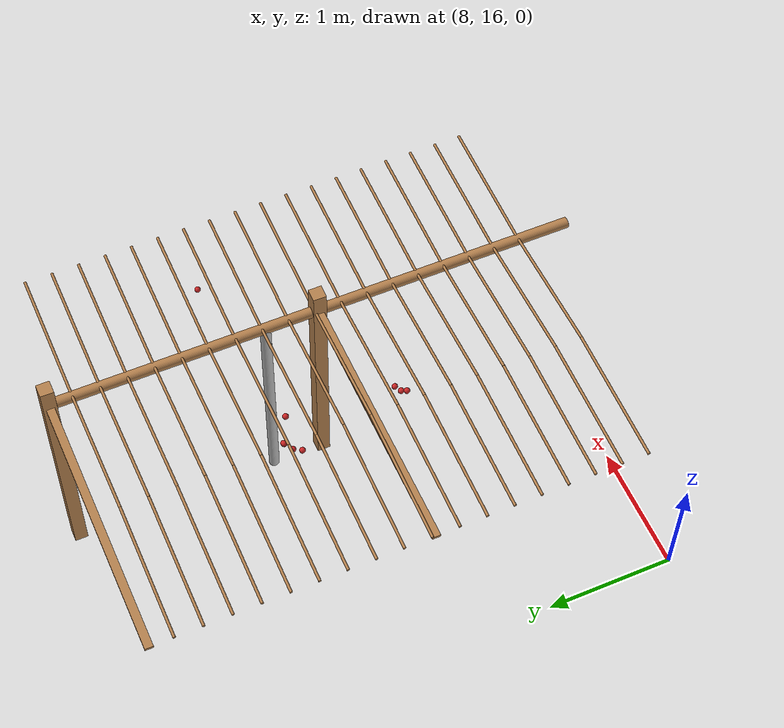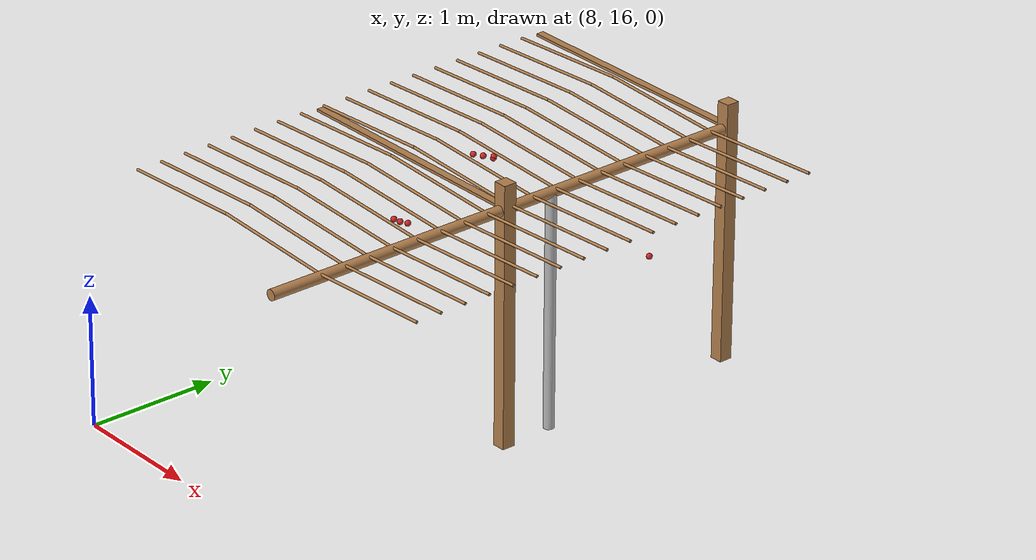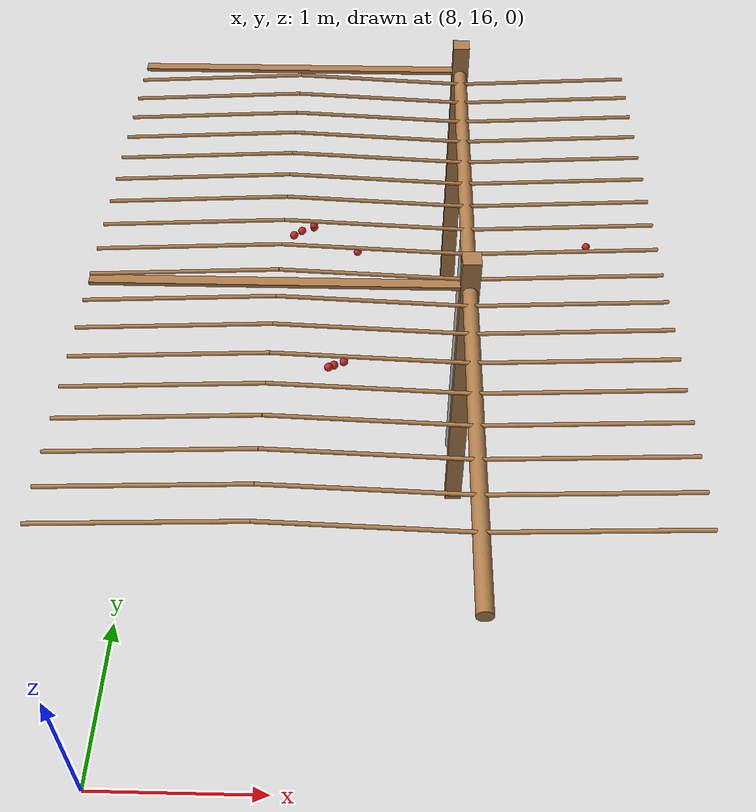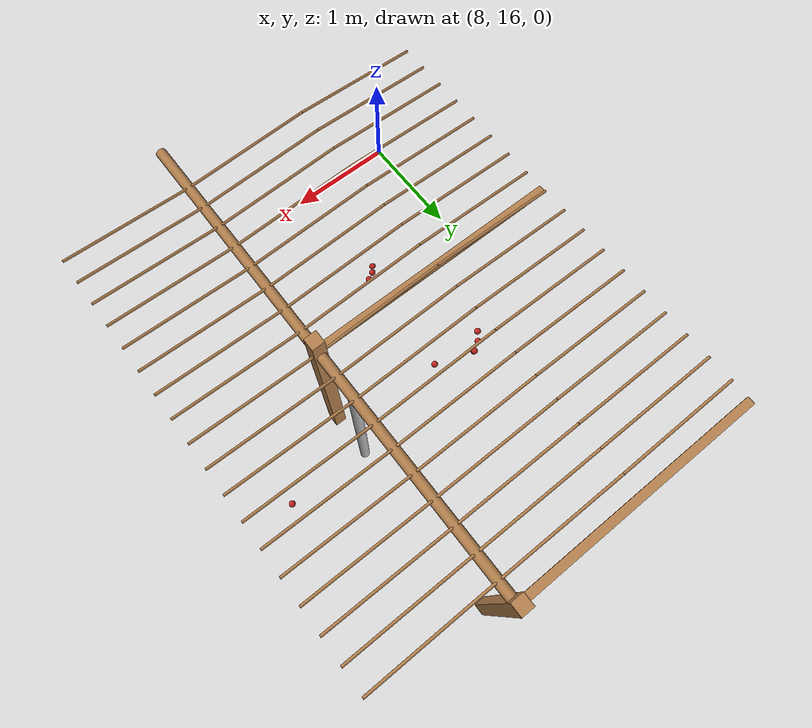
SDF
<sdf version="1.4">
 <model name="pergola">
  <include><name>post_64</name><pose>10.0 18.0 0 0 0 0</pose><uri>model://post</uri></include>
  <include><name>post_65</name><pose>10.0 20.0 0 0 0 0</pose><uri>model://post</uri></include>
  <link name="beam_53">
   <pose>9.0 18.0 1.81 0 0 0</pose>
   <collision name="collision"><geometry><box><size>2.0 0.06 0.02</size></box></geometry></collision>
   <visual name="visual">
    <geometry><box><size>2.0 0.06 0.02</size></box></geometry>
    <material><script><name>Gazebo/Wood</name></script></material>
   </visual>
   <inertial>
    <mass>5</mass>
    <inertia>
     <ixx>0.0016666666666666668</ixx>
     <ixy>0.0</ixy>
     <ixz>0.0</ixz>
     <iyy>1.6681666666666664</iyy>
     <iyz>0.0</iyz>
     <izz>1.6668333333333332</izz>
    </inertia>
   </inertial>
  </link>
  <link name="beam_54">
   <pose>9.0 20.0 1.81 0 0 0</pose>
   <collision name="collision"><geometry><box><size>2.0 0.06 0.02</size></box></geometry></collision>
   <visual name="visual">
    <geometry><box><size>2.0 0.06 0.02</size></box></geometry>
    <material><script><name>Gazebo/Wood</name></script></material>
   </visual>
   <inertial>
    <mass>5</mass>
    <inertia>
     <ixx>0.0016666666666666668</ixx>
     <ixy>0.0</ixy>
     <ixz>0.0</ixz>
     <iyy>1.6681666666666664</iyy>
     <iyz>0.0</iyz>
     <izz>1.6668333333333332</izz>
    </inertia>
   </inertial>
  </link>
  <include><name>tree_59</name><pose>10.0 18.4 0 0 0 0</pose><uri>model://tree_trunk</uri></include>
  <link name="baseBranch_58">
   <pose>10.0 17.0 1.8 1.5707963267948966 0 0</pose>
   <collision name="collision">
    <geometry><cylinder><radius>0.04</radius><length>1.94</length></cylinder></geometry>
   </collision>
   <visual name="visual">
    <geometry><cylinder><radius>0.04</radius><length>1.94</length></cylinder></geometry>
    <material><script><name>Gazebo/WoodFloor</name></script></material>
   </visual>
   <inertial>
    <mass>10</mass>
    <inertia>
     <ixx>3.140333333333333</ixx>
     <ixy>0.0</ixy>
     <ixz>0.0</ixz>
     <iyy>3.140333333333333</iyy>
     <iyz>0.0</iyz>
     <izz>0.008</izz>
    </inertia>
   </inertial>
  </link>
  <link name="baseBranch_59">
   <pose>10.0 19.0 1.8 1.5707963267948966 0 0</pose>
   <collision name="collision">
    <geometry><cylinder><radius>0.04</radius><length>1.94</length></cylinder></geometry>
   </collision>
   <visual name="visual">
    <geometry><cylinder><radius>0.04</radius><length>1.94</length></cylinder></geometry>
    <material><script><name>Gazebo/WoodFloor</name></script></material>
   </visual>
   <inertial>
    <mass>10</mass>
    <inertia>
     <ixx>3.140333333333333</ixx>
     <ixy>0.0</ixy>
     <ixz>0.0</ixz>
     <iyy>3.140333333333333</iyy>
     <iyz>0.0</iyz>
     <izz>0.008</izz>
    </inertia>
   </inertial>
  </link>
  <link name="vine_964">
   <pose>8.5 16.430000000000003 1.85 0 1.5208379310729538 0</pose>
   <collision name="collision">
    <geometry><cylinder><radius>0.01</radius><length>1.0012492197250393</length></cylinder></geometry>
   </collision>
   <visual name="visual">
    <geometry><cylinder><radius>0.01</radius><length>1.0012492197250393</length></cylinder></geometry>
    <material><script><name>Gazebo/WoodFloor</name></script></material>
   </visual>
   <inertial>
    <mass>5</mass>
    <inertia>
     <ixx>0.41783333333333345</ixx>
     <ixy>0.0</ixy>
     <ixz>0.0</ixz>
     <iyy>0.41783333333333345</iyy>
     <iyz>0.0</iyz>
     <izz>0.00025</izz>
    </inertia>
   </inertial>
  </link>
  <link name="vine_965">
   <pose>9.5 16.430000000000003 1.85 0 -1.5208379310729538 0</pose>
   <collision name="collision">
    <geometry><cylinder><radius>0.01</radius><length>1.0012492197250393</length></cylinder></geometry>
   </collision>
   <visual name="visual">
    <geometry><cylinder><radius>0.01</radius><length>1.0012492197250393</length></cylinder></geometry>
    <material><script><name>Gazebo/WoodFloor</name></script></material>
   </visual>
   <inertial>
    <mass>5</mass>
    <inertia>
     <ixx>0.41783333333333345</ixx>
     <ixy>0.0</ixy>
     <ixz>0.0</ixz>
     <iyy>0.41783333333333345</iyy>
     <iyz>0.0</iyz>
     <izz>0.00025</izz>
    </inertia>
   </inertial>
  </link>
  <link name="vine_966">
   <pose>8.5 16.630000000000003 1.85 0 1.5208379310729538 0</pose>
   <collision name="collision">
    <geometry><cylinder><radius>0.01</radius><length>1.0012492197250393</length></cylinder></geometry>
   </collision>
   <visual name="visual">
    <geometry><cylinder><radius>0.01</radius><length>1.0012492197250393</length></cylinder></geometry>
    <material><script><name>Gazebo/WoodFloor</name></script></material>
   </visual>
   <inertial>
    <mass>5</mass>
    <inertia>
     <ixx>0.41783333333333345</ixx>
     <ixy>0.0</ixy>
     <ixz>0.0</ixz>
     <iyy>0.41783333333333345</iyy>
     <iyz>0.0</iyz>
     <izz>0.00025</izz>
    </inertia>
   </inertial>
  </link>
  <link name="vine_967">
   <pose>9.5 16.630000000000003 1.85 0 -1.5208379310729538 0</pose>
   <collision name="collision">
    <geometry><cylinder><radius>0.01</radius><length>1.0012492197250393</length></cylinder></geometry>
   </collision>
   <visual name="visual">
    <geometry><cylinder><radius>0.01</radius><length>1.0012492197250393</length></cylinder></geometry>
    <material><script><name>Gazebo/WoodFloor</name></script></material>
   </visual>
   <inertial>
    <mass>5</mass>
    <inertia>
     <ixx>0.41783333333333345</ixx>
     <ixy>0.0</ixy>
     <ixz>0.0</ixz>
     <iyy>0.41783333333333345</iyy>
     <iyz>0.0</iyz>
     <izz>0.00025</izz>
    </inertia>
   </inertial>
  </link>
  <link name="vine_968">
   <pose>8.5 16.830000000000002 1.85 0 1.5208379310729538 0</pose>
   <collision name="collision">
    <geometry><cylinder><radius>0.01</radius><length>1.0012492197250393</length></cylinder></geometry>
   </collision>
   <visual name="visual">
    <geometry><cylinder><radius>0.01</radius><length>1.0012492197250393</length></cylinder></geometry>
    <material><script><name>Gazebo/WoodFloor</name></script></material>
   </visual>
   <inertial>
    <mass>5</mass>
    <inertia>
     <ixx>0.41783333333333345</ixx>
     <ixy>0.0</ixy>
     <ixz>0.0</ixz>
     <iyy>0.41783333333333345</iyy>
     <iyz>0.0</iyz>
     <izz>0.00025</izz>
    </inertia>
   </inertial>
  </link>
  <link name="vine_969">
   <pose>9.5 16.830000000000002 1.85 0 -1.5208379310729538 0</pose>
   <collision name="collision">
    <geometry><cylinder><radius>0.01</radius><length>1.0012492197250393</length></cylinder></geometry>
   </collision>
   <visual name="visual">
    <geometry><cylinder><radius>0.01</radius><length>1.0012492197250393</length></cylinder></geometry>
    <material><script><name>Gazebo/WoodFloor</name></script></material>
   </visual>
   <inertial>
    <mass>5</mass>
    <inertia>
     <ixx>0.41783333333333345</ixx>
     <ixy>0.0</ixy>
     <ixz>0.0</ixz>
     <iyy>0.41783333333333345</iyy>
     <iyz>0.0</iyz>
     <izz>0.00025</izz>
    </inertia>
   </inertial>
  </link>
  <link name="vine_970">
   <pose>8.5 17.03 1.85 0 1.5208379310729538 0</pose>
   <collision name="collision">
    <geometry><cylinder><radius>0.01</radius><length>1.0012492197250393</length></cylinder></geometry>
   </collision>
   <visual name="visual">
    <geometry><cylinder><radius>0.01</radius><length>1.0012492197250393</length></cylinder></geometry>
    <material><script><name>Gazebo/WoodFloor</name></script></material>
   </visual>
   <inertial>
    <mass>5</mass>
    <inertia>
     <ixx>0.41783333333333345</ixx>
     <ixy>0.0</ixy>
     <ixz>0.0</ixz>
     <iyy>0.41783333333333345</iyy>
     <iyz>0.0</iyz>
     <izz>0.00025</izz>
    </inertia>
   </inertial>
  </link>
  <link name="vine_971">
   <pose>9.5 17.03 1.85 0 -1.5208379310729538 0</pose>
   <collision name="collision">
    <geometry><cylinder><radius>0.01</radius><length>1.0012492197250393</length></cylinder></geometry>
   </collision>
   <visual name="visual">
    <geometry><cylinder><radius>0.01</radius><length>1.0012492197250393</length></cylinder></geometry>
    <material><script><name>Gazebo/WoodFloor</name></script></material>
   </visual>
   <inertial>
    <mass>5</mass>
    <inertia>
     <ixx>0.41783333333333345</ixx>
     <ixy>0.0</ixy>
     <ixz>0.0</ixz>
     <iyy>0.41783333333333345</iyy>
     <iyz>0.0</iyz>
     <izz>0.00025</izz>
    </inertia>
   </inertial>
  </link>
  <link name="vine_972">
   <pose>8.5 17.23 1.85 0 1.5208379310729538 0</pose>
   <collision name="collision">
    <geometry><cylinder><radius>0.01</radius><length>1.0012492197250393</length></cylinder></geometry>
   </collision>
   <visual name="visual">
    <geometry><cylinder><radius>0.01</radius><length>1.0012492197250393</length></cylinder></geometry>
    <material><script><name>Gazebo/WoodFloor</name></script></material>
   </visual>
   <inertial>
    <mass>5</mass>
    <inertia>
     <ixx>0.41783333333333345</ixx>
     <ixy>0.0</ixy>
     <ixz>0.0</ixz>
     <iyy>0.41783333333333345</iyy>
     <iyz>0.0</iyz>
     <izz>0.00025</izz>
    </inertia>
   </inertial>
  </link>
  <link name="vine_973">
   <pose>9.5 17.23 1.85 0 -1.5208379310729538 0</pose>
   <collision name="collision">
    <geometry><cylinder><radius>0.01</radius><length>1.0012492197250393</length></cylinder></geometry>
   </collision>
   <visual name="visual">
    <geometry><cylinder><radius>0.01</radius><length>1.0012492197250393</length></cylinder></geometry>
    <material><script><name>Gazebo/WoodFloor</name></script></material>
   </visual>
   <inertial>
    <mass>5</mass>
    <inertia>
     <ixx>0.41783333333333345</ixx>
     <ixy>0.0</ixy>
     <ixz>0.0</ixz>
     <iyy>0.41783333333333345</iyy>
     <iyz>0.0</iyz>
     <izz>0.00025</izz>
    </inertia>
   </inertial>
  </link>
  <link name="vine_974">
   <pose>8.5 17.430000000000003 1.85 0 1.5208379310729538 0</pose>
   <collision name="collision">
    <geometry><cylinder><radius>0.01</radius><length>1.0012492197250393</length></cylinder></geometry>
   </collision>
   <visual name="visual">
    <geometry><cylinder><radius>0.01</radius><length>1.0012492197250393</length></cylinder></geometry>
    <material><script><name>Gazebo/WoodFloor</name></script></material>
   </visual>
   <inertial>
    <mass>5</mass>
    <inertia>
     <ixx>0.41783333333333345</ixx>
     <ixy>0.0</ixy>
     <ixz>0.0</ixz>
     <iyy>0.41783333333333345</iyy>
     <iyz>0.0</iyz>
     <izz>0.00025</izz>
    </inertia>
   </inertial>
  </link>
  <link name="vine_975">
   <pose>9.5 17.430000000000003 1.85 0 -1.5208379310729538 0</pose>
   <collision name="collision">
    <geometry><cylinder><radius>0.01</radius><length>1.0012492197250393</length></cylinder></geometry>
   </collision>
   <visual name="visual">
    <geometry><cylinder><radius>0.01</radius><length>1.0012492197250393</length></cylinder></geometry>
    <material><script><name>Gazebo/WoodFloor</name></script></material>
   </visual>
   <inertial>
    <mass>5</mass>
    <inertia>
     <ixx>0.41783333333333345</ixx>
     <ixy>0.0</ixy>
     <ixz>0.0</ixz>
     <iyy>0.41783333333333345</iyy>
     <iyz>0.0</iyz>
     <izz>0.00025</izz>
    </inertia>
   </inertial>
  </link>
  <link name="vine_976">
   <pose>8.5 17.630000000000003 1.85 0 1.5208379310729538 0</pose>
   <collision name="collision">
    <geometry><cylinder><radius>0.01</radius><length>1.0012492197250393</length></cylinder></geometry>
   </collision>
   <visual name="visual">
    <geometry><cylinder><radius>0.01</radius><length>1.0012492197250393</length></cylinder></geometry>
    <material><script><name>Gazebo/WoodFloor</name></script></material>
   </visual>
   <inertial>
    <mass>5</mass>
    <inertia>
     <ixx>0.41783333333333345</ixx>
     <ixy>0.0</ixy>
     <ixz>0.0</ixz>
     <iyy>0.41783333333333345</iyy>
     <iyz>0.0</iyz>
     <izz>0.00025</izz>
    </inertia>
   </inertial>
  </link>
  <link name="vine_977">
   <pose>9.5 17.630000000000003 1.85 0 -1.5208379310729538 0</pose>
   <collision name="collision">
    <geometry><cylinder><radius>0.01</radius><length>1.0012492197250393</length></cylinder></geometry>
   </collision>
   <visual name="visual">
    <geometry><cylinder><radius>0.01</radius><length>1.0012492197250393</length></cylinder></geometry>
    <material><script><name>Gazebo/WoodFloor</name></script></material>
   </visual>
   <inertial>
    <mass>5</mass>
    <inertia>
     <ixx>0.41783333333333345</ixx>
     <ixy>0.0</ixy>
     <ixz>0.0</ixz>
     <iyy>0.41783333333333345</iyy>
     <iyz>0.0</iyz>
     <izz>0.00025</izz>
    </inertia>
   </inertial>
  </link>
  <link name="vine_978">
   <pose>8.5 17.830000000000002 1.85 0 1.5208379310729538 0</pose>
   <collision name="collision">
    <geometry><cylinder><radius>0.01</radius><length>1.0012492197250393</length></cylinder></geometry>
   </collision>
   <visual name="visual">
    <geometry><cylinder><radius>0.01</radius><length>1.0012492197250393</length></cylinder></geometry>
    <material><script><name>Gazebo/WoodFloor</name></script></material>
   </visual>
   <inertial>
    <mass>5</mass>
    <inertia>
     <ixx>0.41783333333333345</ixx>
     <ixy>0.0</ixy>
     <ixz>0.0</ixz>
     <iyy>0.41783333333333345</iyy>
     <iyz>0.0</iyz>
     <izz>0.00025</izz>
    </inertia>
   </inertial>
  </link>
  <link name="vine_979">
   <pose>9.5 17.830000000000002 1.85 0 -1.5208379310729538 0</pose>
   <collision name="collision">
    <geometry><cylinder><radius>0.01</radius><length>1.0012492197250393</length></cylinder></geometry>
   </collision>
   <visual name="visual">
    <geometry><cylinder><radius>0.01</radius><length>1.0012492197250393</length></cylinder></geometry>
    <material><script><name>Gazebo/WoodFloor</name></script></material>
   </visual>
   <inertial>
    <mass>5</mass>
    <inertia>
     <ixx>0.41783333333333345</ixx>
     <ixy>0.0</ixy>
     <ixz>0.0</ixz>
     <iyy>0.41783333333333345</iyy>
     <iyz>0.0</iyz>
     <izz>0.00025</izz>
    </inertia>
   </inertial>
  </link>
  <link name="vine_980">
   <pose>8.5 18.03 1.85 0 1.5208379310729538 0</pose>
   <collision name="collision">
    <geometry><cylinder><radius>0.01</radius><length>1.0012492197250393</length></cylinder></geometry>
   </collision>
   <visual name="visual">
    <geometry><cylinder><radius>0.01</radius><length>1.0012492197250393</length></cylinder></geometry>
    <material><script><name>Gazebo/WoodFloor</name></script></material>
   </visual>
   <inertial>
    <mass>5</mass>
    <inertia>
     <ixx>0.41783333333333345</ixx>
     <ixy>0.0</ixy>
     <ixz>0.0</ixz>
     <iyy>0.41783333333333345</iyy>
     <iyz>0.0</iyz>
     <izz>0.00025</izz>
    </inertia>
   </inertial>
  </link>
  <link name="vine_981">
   <pose>9.5 18.03 1.85 0 -1.5208379310729538 0</pose>
   <collision name="collision">
    <geometry><cylinder><radius>0.01</radius><length>1.0012492197250393</length></cylinder></geometry>
   </collision>
   <visual name="visual">
    <geometry><cylinder><radius>0.01</radius><length>1.0012492197250393</length></cylinder></geometry>
    <material><script><name>Gazebo/WoodFloor</name></script></material>
   </visual>
   <inertial>
    <mass>5</mass>
    <inertia>
     <ixx>0.41783333333333345</ixx>
     <ixy>0.0</ixy>
     <ixz>0.0</ixz>
     <iyy>0.41783333333333345</iyy>
     <iyz>0.0</iyz>
     <izz>0.00025</izz>
    </inertia>
   </inertial>
  </link>
  <link name="vine_982">
   <pose>8.5 18.23 1.85 0 1.5208379310729538 0</pose>
   <collision name="collision">
    <geometry><cylinder><radius>0.01</radius><length>1.0012492197250393</length></cylinder></geometry>
   </collision>
   <visual name="visual">
    <geometry><cylinder><radius>0.01</radius><length>1.0012492197250393</length></cylinder></geometry>
    <material><script><name>Gazebo/WoodFloor</name></script></material>
   </visual>
   <inertial>
    <mass>5</mass>
    <inertia>
     <ixx>0.41783333333333345</ixx>
     <ixy>0.0</ixy>
     <ixz>0.0</ixz>
     <iyy>0.41783333333333345</iyy>
     <iyz>0.0</iyz>
     <izz>0.00025</izz>
    </inertia>
   </inertial>
  </link>
  <link name="vine_983">
   <pose>9.5 18.23 1.85 0 -1.5208379310729538 0</pose>
   <collision name="collision">
    <geometry><cylinder><radius>0.01</radius><length>1.0012492197250393</length></cylinder></geometry>
   </collision>
   <visual name="visual">
    <geometry><cylinder><radius>0.01</radius><length>1.0012492197250393</length></cylinder></geometry>
    <material><script><name>Gazebo/WoodFloor</name></script></material>
   </visual>
   <inertial>
    <mass>5</mass>
    <inertia>
     <ixx>0.41783333333333345</ixx>
     <ixy>0.0</ixy>
     <ixz>0.0</ixz>
     <iyy>0.41783333333333345</iyy>
     <iyz>0.0</iyz>
     <izz>0.00025</izz>
    </inertia>
   </inertial>
  </link>
  <link name="vine_984">
   <pose>8.5 18.430000000000003 1.85 0 1.5208379310729538 0</pose>
   <collision name="collision">
    <geometry><cylinder><radius>0.01</radius><length>1.0012492197250393</length></cylinder></geometry>
   </collision>
   <visual name="visual">
    <geometry><cylinder><radius>0.01</radius><length>1.0012492197250393</length></cylinder></geometry>
    <material><script><name>Gazebo/WoodFloor</name></script></material>
   </visual>
   <inertial>
    <mass>5</mass>
    <inertia>
     <ixx>0.41783333333333345</ixx>
     <ixy>0.0</ixy>
     <ixz>0.0</ixz>
     <iyy>0.41783333333333345</iyy>
     <iyz>0.0</iyz>
     <izz>0.00025</izz>
    </inertia>
   </inertial>
  </link>
  <link name="vine_985">
   <pose>9.5 18.430000000000003 1.85 0 -1.5208379310729538 0</pose>
   <collision name="collision">
    <geometry><cylinder><radius>0.01</radius><length>1.0012492197250393</length></cylinder></geometry>
   </collision>
   <visual name="visual">
    <geometry><cylinder><radius>0.01</radius><length>1.0012492197250393</length></cylinder></geometry>
    <material><script><name>Gazebo/WoodFloor</name></script></material>
   </visual>
   <inertial>
    <mass>5</mass>
    <inertia>
     <ixx>0.41783333333333345</ixx>
     <ixy>0.0</ixy>
     <ixz>0.0</ixz>
     <iyy>0.41783333333333345</iyy>
     <iyz>0.0</iyz>
     <izz>0.00025</izz>
    </inertia>
   </inertial>
  </link>
  <link name="vine_986">
   <pose>8.5 18.630000000000003 1.85 0 1.5208379310729538 0</pose>
   <collision name="collision">
    <geometry><cylinder><radius>0.01</radius><length>1.0012492197250393</length></cylinder></geometry>
   </collision>
   <visual name="visual">
    <geometry><cylinder><radius>0.01</radius><length>1.0012492197250393</length></cylinder></geometry>
    <material><script><name>Gazebo/WoodFloor</name></script></material>
   </visual>
   <inertial>
    <mass>5</mass>
    <inertia>
     <ixx>0.41783333333333345</ixx>
     <ixy>0.0</ixy>
     <ixz>0.0</ixz>
     <iyy>0.41783333333333345</iyy>
     <iyz>0.0</iyz>
     <izz>0.00025</izz>
    </inertia>
   </inertial>
  </link>
  <link name="vine_987">
   <pose>9.5 18.630000000000003 1.85 0 -1.5208379310729538 0</pose>
   <collision name="collision">
    <geometry><cylinder><radius>0.01</radius><length>1.0012492197250393</length></cylinder></geometry>
   </collision>
   <visual name="visual">
    <geometry><cylinder><radius>0.01</radius><length>1.0012492197250393</length></cylinder></geometry>
    <material><script><name>Gazebo/WoodFloor</name></script></material>
   </visual>
   <inertial>
    <mass>5</mass>
    <inertia>
     <ixx>0.41783333333333345</ixx>
     <ixy>0.0</ixy>
     <ixz>0.0</ixz>
     <iyy>0.41783333333333345</iyy>
     <iyz>0.0</iyz>
     <izz>0.00025</izz>
    </inertia>
   </inertial>
  </link>
  <link name="vine_988">
   <pose>8.5 18.830000000000002 1.85 0 1.5208379310729538 0</pose>
   <collision name="collision">
    <geometry><cylinder><radius>0.01</radius><length>1.0012492197250393</length></cylinder></geometry>
   </collision>
   <visual name="visual">
    <geometry><cylinder><radius>0.01</radius><length>1.0012492197250393</length></cylinder></geometry>
    <material><script><name>Gazebo/WoodFloor</name></script></material>
   </visual>
   <inertial>
    <mass>5</mass>
    <inertia>
     <ixx>0.41783333333333345</ixx>
     <ixy>0.0</ixy>
     <ixz>0.0</ixz>
     <iyy>0.41783333333333345</iyy>
     <iyz>0.0</iyz>
     <izz>0.00025</izz>
    </inertia>
   </inertial>
  </link>
  <link name="vine_989">
   <pose>9.5 18.830000000000002 1.85 0 -1.5208379310729538 0</pose>
   <collision name="collision">
    <geometry><cylinder><radius>0.01</radius><length>1.0012492197250393</length></cylinder></geometry>
   </collision>
   <visual name="visual">
    <geometry><cylinder><radius>0.01</radius><length>1.0012492197250393</length></cylinder></geometry>
    <material><script><name>Gazebo/WoodFloor</name></script></material>
   </visual>
   <inertial>
    <mass>5</mass>
    <inertia>
     <ixx>0.41783333333333345</ixx>
     <ixy>0.0</ixy>
     <ixz>0.0</ixz>
     <iyy>0.41783333333333345</iyy>
     <iyz>0.0</iyz>
     <izz>0.00025</izz>
    </inertia>
   </inertial>
  </link>
  <link name="vine_990">
   <pose>8.5 19.03 1.85 0 1.5208379310729538 0</pose>
   <collision name="collision">
    <geometry><cylinder><radius>0.01</radius><length>1.0012492197250393</length></cylinder></geometry>
   </collision>
   <visual name="visual">
    <geometry><cylinder><radius>0.01</radius><length>1.0012492197250393</length></cylinder></geometry>
    <material><script><name>Gazebo/WoodFloor</name></script></material>
   </visual>
   <inertial>
    <mass>5</mass>
    <inertia>
     <ixx>0.41783333333333345</ixx>
     <ixy>0.0</ixy>
     <ixz>0.0</ixz>
     <iyy>0.41783333333333345</iyy>
     <iyz>0.0</iyz>
     <izz>0.00025</izz>
    </inertia>
   </inertial>
  </link>
  <link name="vine_991">
   <pose>9.5 19.03 1.85 0 -1.5208379310729538 0</pose>
   <collision name="collision">
    <geometry><cylinder><radius>0.01</radius><length>1.0012492197250393</length></cylinder></geometry>
   </collision>
   <visual name="visual">
    <geometry><cylinder><radius>0.01</radius><length>1.0012492197250393</length></cylinder></geometry>
    <material><script><name>Gazebo/WoodFloor</name></script></material>
   </visual>
   <inertial>
    <mass>5</mass>
    <inertia>
     <ixx>0.41783333333333345</ixx>
     <ixy>0.0</ixy>
     <ixz>0.0</ixz>
     <iyy>0.41783333333333345</iyy>
     <iyz>0.0</iyz>
     <izz>0.00025</izz>
    </inertia>
   </inertial>
  </link>
  <link name="vine_992">
   <pose>8.5 19.230000000000004 1.85 0 1.5208379310729538 0</pose>
   <collision name="collision">
    <geometry><cylinder><radius>0.01</radius><length>1.0012492197250393</length></cylinder></geometry>
   </collision>
   <visual name="visual">
    <geometry><cylinder><radius>0.01</radius><length>1.0012492197250393</length></cylinder></geometry>
    <material><script><name>Gazebo/WoodFloor</name></script></material>
   </visual>
   <inertial>
    <mass>5</mass>
    <inertia>
     <ixx>0.41783333333333345</ixx>
     <ixy>0.0</ixy>
     <ixz>0.0</ixz>
     <iyy>0.41783333333333345</iyy>
     <iyz>0.0</iyz>
     <izz>0.00025</izz>
    </inertia>
   </inertial>
  </link>
  <link name="vine_993">
   <pose>9.5 19.230000000000004 1.85 0 -1.5208379310729538 0</pose>
   <collision name="collision">
    <geometry><cylinder><radius>0.01</radius><length>1.0012492197250393</length></cylinder></geometry>
   </collision>
   <visual name="visual">
    <geometry><cylinder><radius>0.01</radius><length>1.0012492197250393</length></cylinder></geometry>
    <material><script><name>Gazebo/WoodFloor</name></script></material>
   </visual>
   <inertial>
    <mass>5</mass>
    <inertia>
     <ixx>0.41783333333333345</ixx>
     <ixy>0.0</ixy>
     <ixz>0.0</ixz>
     <iyy>0.41783333333333345</iyy>
     <iyz>0.0</iyz>
     <izz>0.00025</izz>
    </inertia>
   </inertial>
  </link>
  <link name="vine_994">
   <pose>8.5 19.430000000000003 1.85 0 1.5208379310729538 0</pose>
   <collision name="collision">
    <geometry><cylinder><radius>0.01</radius><length>1.0012492197250393</length></cylinder></geometry>
   </collision>
   <visual name="visual">
    <geometry><cylinder><radius>0.01</radius><length>1.0012492197250393</length></cylinder></geometry>
    <material><script><name>Gazebo/WoodFloor</name></script></material>
   </visual>
   <inertial>
    <mass>5</mass>
    <inertia>
     <ixx>0.41783333333333345</ixx>
     <ixy>0.0</ixy>
     <ixz>0.0</ixz>
     <iyy>0.41783333333333345</iyy>
     <iyz>0.0</iyz>
     <izz>0.00025</izz>
    </inertia>
   </inertial>
  </link>
  <link name="vine_995">
   <pose>9.5 19.430000000000003 1.85 0 -1.5208379310729538 0</pose>
   <collision name="collision">
    <geometry><cylinder><radius>0.01</radius><length>1.0012492197250393</length></cylinder></geometry>
   </collision>
   <visual name="visual">
    <geometry><cylinder><radius>0.01</radius><length>1.0012492197250393</length></cylinder></geometry>
    <material><script><name>Gazebo/WoodFloor</name></script></material>
   </visual>
   <inertial>
    <mass>5</mass>
    <inertia>
     <ixx>0.41783333333333345</ixx>
     <ixy>0.0</ixy>
     <ixz>0.0</ixz>
     <iyy>0.41783333333333345</iyy>
     <iyz>0.0</iyz>
     <izz>0.00025</izz>
    </inertia>
   </inertial>
  </link>
  <link name="vine_996">
   <pose>8.5 19.630000000000003 1.85 0 1.5208379310729538 0</pose>
   <collision name="collision">
    <geometry><cylinder><radius>0.01</radius><length>1.0012492197250393</length></cylinder></geometry>
   </collision>
   <visual name="visual">
    <geometry><cylinder><radius>0.01</radius><length>1.0012492197250393</length></cylinder></geometry>
    <material><script><name>Gazebo/WoodFloor</name></script></material>
   </visual>
   <inertial>
    <mass>5</mass>
    <inertia>
     <ixx>0.41783333333333345</ixx>
     <ixy>0.0</ixy>
     <ixz>0.0</ixz>
     <iyy>0.41783333333333345</iyy>
     <iyz>0.0</iyz>
     <izz>0.00025</izz>
    </inertia>
   </inertial>
  </link>
  <link name="vine_997">
   <pose>9.5 19.630000000000003 1.85 0 -1.5208379310729538 0</pose>
   <collision name="collision">
    <geometry><cylinder><radius>0.01</radius><length>1.0012492197250393</length></cylinder></geometry>
   </collision>
   <visual name="visual">
    <geometry><cylinder><radius>0.01</radius><length>1.0012492197250393</length></cylinder></geometry>
    <material><script><name>Gazebo/WoodFloor</name></script></material>
   </visual>
   <inertial>
    <mass>5</mass>
    <inertia>
     <ixx>0.41783333333333345</ixx>
     <ixy>0.0</ixy>
     <ixz>0.0</ixz>
     <iyy>0.41783333333333345</iyy>
     <iyz>0.0</iyz>
     <izz>0.00025</izz>
    </inertia>
   </inertial>
  </link>
  <link name="vine_998">
   <pose>8.5 19.830000000000002 1.85 0 1.5208379310729538 0</pose>
   <collision name="collision">
    <geometry><cylinder><radius>0.01</radius><length>1.0012492197250393</length></cylinder></geometry>
   </collision>
   <visual name="visual">
    <geometry><cylinder><radius>0.01</radius><length>1.0012492197250393</length></cylinder></geometry>
    <material><script><name>Gazebo/WoodFloor</name></script></material>
   </visual>
   <inertial>
    <mass>5</mass>
    <inertia>
     <ixx>0.41783333333333345</ixx>
     <ixy>0.0</ixy>
     <ixz>0.0</ixz>
     <iyy>0.41783333333333345</iyy>
     <iyz>0.0</iyz>
     <izz>0.00025</izz>
    </inertia>
   </inertial>
  </link>
  <link name="vine_999">
   <pose>9.5 19.830000000000002 1.85 0 -1.5208379310729538 0</pose>
   <collision name="collision">
    <geometry><cylinder><radius>0.01</radius><length>1.0012492197250393</length></cylinder></geometry>
   </collision>
   <visual name="visual">
    <geometry><cylinder><radius>0.01</radius><length>1.0012492197250393</length></cylinder></geometry>
    <material><script><name>Gazebo/WoodFloor</name></script></material>
   </visual>
   <inertial>
    <mass>5</mass>
    <inertia>
     <ixx>0.41783333333333345</ixx>
     <ixy>0.0</ixy>
     <ixz>0.0</ixz>
     <iyy>0.41783333333333345</iyy>
     <iyz>0.0</iyz>
     <izz>0.00025</izz>
    </inertia>
   </inertial>
  </link>
  <link name="vine_1164">
   <pose>10.5 16.430000000000003 1.85 0 1.5208379310729538 0</pose>
   <collision name="collision">
    <geometry><cylinder><radius>0.01</radius><length>1.0012492197250393</length></cylinder></geometry>
   </collision>
   <visual name="visual">
    <geometry><cylinder><radius>0.01</radius><length>1.0012492197250393</length></cylinder></geometry>
    <material><script><name>Gazebo/WoodFloor</name></script></material>
   </visual>
   <inertial>
    <mass>5</mass>
    <inertia>
     <ixx>0.41783333333333345</ixx>
     <ixy>0.0</ixy>
     <ixz>0.0</ixz>
     <iyy>0.41783333333333345</iyy>
     <iyz>0.0</iyz>
     <izz>0.00025</izz>
    </inertia>
   </inertial>
  </link>
  <link name="vine_1166">
   <pose>10.5 16.630000000000003 1.85 0 1.5208379310729538 0</pose>
   <collision name="collision">
    <geometry><cylinder><radius>0.01</radius><length>1.0012492197250393</length></cylinder></geometry>
   </collision>
   <visual name="visual">
    <geometry><cylinder><radius>0.01</radius><length>1.0012492197250393</length></cylinder></geometry>
    <material><script><name>Gazebo/WoodFloor</name></script></material>
   </visual>
   <inertial>
    <mass>5</mass>
    <inertia>
     <ixx>0.41783333333333345</ixx>
     <ixy>0.0</ixy>
     <ixz>0.0</ixz>
     <iyy>0.41783333333333345</iyy>
     <iyz>0.0</iyz>
     <izz>0.00025</izz>
    </inertia>
   </inertial>
  </link>
  <link name="vine_1168">
   <pose>10.5 16.830000000000002 1.85 0 1.5208379310729538 0</pose>
   <collision name="collision">
    <geometry><cylinder><radius>0.01</radius><length>1.0012492197250393</length></cylinder></geometry>
   </collision>
   <visual name="visual">
    <geometry><cylinder><radius>0.01</radius><length>1.0012492197250393</length></cylinder></geometry>
    <material><script><name>Gazebo/WoodFloor</name></script></material>
   </visual>
   <inertial>
    <mass>5</mass>
    <inertia>
     <ixx>0.41783333333333345</ixx>
     <ixy>0.0</ixy>
     <ixz>0.0</ixz>
     <iyy>0.41783333333333345</iyy>
     <iyz>0.0</iyz>
     <izz>0.00025</izz>
    </inertia>
   </inertial>
  </link>
  <link name="vine_1170">
   <pose>10.5 17.03 1.85 0 1.5208379310729538 0</pose>
   <collision name="collision">
    <geometry><cylinder><radius>0.01</radius><length>1.0012492197250393</length></cylinder></geometry>
   </collision>
   <visual name="visual">
    <geometry><cylinder><radius>0.01</radius><length>1.0012492197250393</length></cylinder></geometry>
    <material><script><name>Gazebo/WoodFloor</name></script></material>
   </visual>
   <inertial>
    <mass>5</mass>
    <inertia>
     <ixx>0.41783333333333345</ixx>
     <ixy>0.0</ixy>
     <ixz>0.0</ixz>
     <iyy>0.41783333333333345</iyy>
     <iyz>0.0</iyz>
     <izz>0.00025</izz>
    </inertia>
   </inertial>
  </link>
  <link name="vine_1172">
   <pose>10.5 17.23 1.85 0 1.5208379310729538 0</pose>
   <collision name="collision">
    <geometry><cylinder><radius>0.01</radius><length>1.0012492197250393</length></cylinder></geometry>
   </collision>
   <visual name="visual">
    <geometry><cylinder><radius>0.01</radius><length>1.0012492197250393</length></cylinder></geometry>
    <material><script><name>Gazebo/WoodFloor</name></script></material>
   </visual>
   <inertial>
    <mass>5</mass>
    <inertia>
     <ixx>0.41783333333333345</ixx>
     <ixy>0.0</ixy>
     <ixz>0.0</ixz>
     <iyy>0.41783333333333345</iyy>
     <iyz>0.0</iyz>
     <izz>0.00025</izz>
    </inertia>
   </inertial>
  </link>
  <link name="vine_1174">
   <pose>10.5 17.430000000000003 1.85 0 1.5208379310729538 0</pose>
   <collision name="collision">
    <geometry><cylinder><radius>0.01</radius><length>1.0012492197250393</length></cylinder></geometry>
   </collision>
   <visual name="visual">
    <geometry><cylinder><radius>0.01</radius><length>1.0012492197250393</length></cylinder></geometry>
    <material><script><name>Gazebo/WoodFloor</name></script></material>
   </visual>
   <inertial>
    <mass>5</mass>
    <inertia>
     <ixx>0.41783333333333345</ixx>
     <ixy>0.0</ixy>
     <ixz>0.0</ixz>
     <iyy>0.41783333333333345</iyy>
     <iyz>0.0</iyz>
     <izz>0.00025</izz>
    </inertia>
   </inertial>
  </link>
  <link name="vine_1176">
   <pose>10.5 17.630000000000003 1.85 0 1.5208379310729538 0</pose>
   <collision name="collision">
    <geometry><cylinder><radius>0.01</radius><length>1.0012492197250393</length></cylinder></geometry>
   </collision>
   <visual name="visual">
    <geometry><cylinder><radius>0.01</radius><length>1.0012492197250393</length></cylinder></geometry>
    <material><script><name>Gazebo/WoodFloor</name></script></material>
   </visual>
   <inertial>
    <mass>5</mass>
    <inertia>
     <ixx>0.41783333333333345</ixx>
     <ixy>0.0</ixy>
     <ixz>0.0</ixz>
     <iyy>0.41783333333333345</iyy>
     <iyz>0.0</iyz>
     <izz>0.00025</izz>
    </inertia>
   </inertial>
  </link>
  <link name="vine_1178">
   <pose>10.5 17.830000000000002 1.85 0 1.5208379310729538 0</pose>
   <collision name="collision">
    <geometry><cylinder><radius>0.01</radius><length>1.0012492197250393</length></cylinder></geometry>
   </collision>
   <visual name="visual">
    <geometry><cylinder><radius>0.01</radius><length>1.0012492197250393</length></cylinder></geometry>
    <material><script><name>Gazebo/WoodFloor</name></script></material>
   </visual>
   <inertial>
    <mass>5</mass>
    <inertia>
     <ixx>0.41783333333333345</ixx>
     <ixy>0.0</ixy>
     <ixz>0.0</ixz>
     <iyy>0.41783333333333345</iyy>
     <iyz>0.0</iyz>
     <izz>0.00025</izz>
    </inertia>
   </inertial>
  </link>
  <link name="vine_1180">
   <pose>10.5 18.03 1.85 0 1.5208379310729538 0</pose>
   <collision name="collision">
    <geometry><cylinder><radius>0.01</radius><length>1.0012492197250393</length></cylinder></geometry>
   </collision>
   <visual name="visual">
    <geometry><cylinder><radius>0.01</radius><length>1.0012492197250393</length></cylinder></geometry>
    <material><script><name>Gazebo/WoodFloor</name></script></material>
   </visual>
   <inertial>
    <mass>5</mass>
    <inertia>
     <ixx>0.41783333333333345</ixx>
     <ixy>0.0</ixy>
     <ixz>0.0</ixz>
     <iyy>0.41783333333333345</iyy>
     <iyz>0.0</iyz>
     <izz>0.00025</izz>
    </inertia>
   </inertial>
  </link>
  <link name="vine_1182">
   <pose>10.5 18.23 1.85 0 1.5208379310729538 0</pose>
   <collision name="collision">
    <geometry><cylinder><radius>0.01</radius><length>1.0012492197250393</length></cylinder></geometry>
   </collision>
   <visual name="visual">
    <geometry><cylinder><radius>0.01</radius><length>1.0012492197250393</length></cylinder></geometry>
    <material><script><name>Gazebo/WoodFloor</name></script></material>
   </visual>
   <inertial>
    <mass>5</mass>
    <inertia>
     <ixx>0.41783333333333345</ixx>
     <ixy>0.0</ixy>
     <ixz>0.0</ixz>
     <iyy>0.41783333333333345</iyy>
     <iyz>0.0</iyz>
     <izz>0.00025</izz>
    </inertia>
   </inertial>
  </link>
  <link name="vine_1184">
   <pose>10.5 18.430000000000003 1.85 0 1.5208379310729538 0</pose>
   <collision name="collision">
    <geometry><cylinder><radius>0.01</radius><length>1.0012492197250393</length></cylinder></geometry>
   </collision>
   <visual name="visual">
    <geometry><cylinder><radius>0.01</radius><length>1.0012492197250393</length></cylinder></geometry>
    <material><script><name>Gazebo/WoodFloor</name></script></material>
   </visual>
   <inertial>
    <mass>5</mass>
    <inertia>
     <ixx>0.41783333333333345</ixx>
     <ixy>0.0</ixy>
     <ixz>0.0</ixz>
     <iyy>0.41783333333333345</iyy>
     <iyz>0.0</iyz>
     <izz>0.00025</izz>
    </inertia>
   </inertial>
  </link>
  <link name="vine_1186">
   <pose>10.5 18.630000000000003 1.85 0 1.5208379310729538 0</pose>
   <collision name="collision">
    <geometry><cylinder><radius>0.01</radius><length>1.0012492197250393</length></cylinder></geometry>
   </collision>
   <visual name="visual">
    <geometry><cylinder><radius>0.01</radius><length>1.0012492197250393</length></cylinder></geometry>
    <material><script><name>Gazebo/WoodFloor</name></script></material>
   </visual>
   <inertial>
    <mass>5</mass>
    <inertia>
     <ixx>0.41783333333333345</ixx>
     <ixy>0.0</ixy>
     <ixz>0.0</ixz>
     <iyy>0.41783333333333345</iyy>
     <iyz>0.0</iyz>
     <izz>0.00025</izz>
    </inertia>
   </inertial>
  </link>
  <link name="vine_1188">
   <pose>10.5 18.830000000000002 1.85 0 1.5208379310729538 0</pose>
   <collision name="collision">
    <geometry><cylinder><radius>0.01</radius><length>1.0012492197250393</length></cylinder></geometry>
   </collision>
   <visual name="visual">
    <geometry><cylinder><radius>0.01</radius><length>1.0012492197250393</length></cylinder></geometry>
    <material><script><name>Gazebo/WoodFloor</name></script></material>
   </visual>
   <inertial>
    <mass>5</mass>
    <inertia>
     <ixx>0.41783333333333345</ixx>
     <ixy>0.0</ixy>
     <ixz>0.0</ixz>
     <iyy>0.41783333333333345</iyy>
     <iyz>0.0</iyz>
     <izz>0.00025</izz>
    </inertia>
   </inertial>
  </link>
  <link name="vine_1190">
   <pose>10.5 19.03 1.85 0 1.5208379310729538 0</pose>
   <collision name="collision">
    <geometry><cylinder><radius>0.01</radius><length>1.0012492197250393</length></cylinder></geometry>
   </collision>
   <visual name="visual">
    <geometry><cylinder><radius>0.01</radius><length>1.0012492197250393</length></cylinder></geometry>
    <material><script><name>Gazebo/WoodFloor</name></script></material>
   </visual>
   <inertial>
    <mass>5</mass>
    <inertia>
     <ixx>0.41783333333333345</ixx>
     <ixy>0.0</ixy>
     <ixz>0.0</ixz>
     <iyy>0.41783333333333345</iyy>
     <iyz>0.0</iyz>
     <izz>0.00025</izz>
    </inertia>
   </inertial>
  </link>
  <link name="vine_1192">
   <pose>10.5 19.230000000000004 1.85 0 1.5208379310729538 0</pose>
   <collision name="collision">
    <geometry><cylinder><radius>0.01</radius><length>1.0012492197250393</length></cylinder></geometry>
   </collision>
   <visual name="visual">
    <geometry><cylinder><radius>0.01</radius><length>1.0012492197250393</length></cylinder></geometry>
    <material><script><name>Gazebo/WoodFloor</name></script></material>
   </visual>
   <inertial>
    <mass>5</mass>
    <inertia>
     <ixx>0.41783333333333345</ixx>
     <ixy>0.0</ixy>
     <ixz>0.0</ixz>
     <iyy>0.41783333333333345</iyy>
     <iyz>0.0</iyz>
     <izz>0.00025</izz>
    </inertia>
   </inertial>
  </link>
  <link name="vine_1194">
   <pose>10.5 19.430000000000003 1.85 0 1.5208379310729538 0</pose>
   <collision name="collision">
    <geometry><cylinder><radius>0.01</radius><length>1.0012492197250393</length></cylinder></geometry>
   </collision>
   <visual name="visual">
    <geometry><cylinder><radius>0.01</radius><length>1.0012492197250393</length></cylinder></geometry>
    <material><script><name>Gazebo/WoodFloor</name></script></material>
   </visual>
   <inertial>
    <mass>5</mass>
    <inertia>
     <ixx>0.41783333333333345</ixx>
     <ixy>0.0</ixy>
     <ixz>0.0</ixz>
     <iyy>0.41783333333333345</iyy>
     <iyz>0.0</iyz>
     <izz>0.00025</izz>
    </inertia>
   </inertial>
  </link>
  <link name="vine_1196">
   <pose>10.5 19.630000000000003 1.85 0 1.5208379310729538 0</pose>
   <collision name="collision">
    <geometry><cylinder><radius>0.01</radius><length>1.0012492197250393</length></cylinder></geometry>
   </collision>
   <visual name="visual">
    <geometry><cylinder><radius>0.01</radius><length>1.0012492197250393</length></cylinder></geometry>
    <material><script><name>Gazebo/WoodFloor</name></script></material>
   </visual>
   <inertial>
    <mass>5</mass>
    <inertia>
     <ixx>0.41783333333333345</ixx>
     <ixy>0.0</ixy>
     <ixz>0.0</ixz>
     <iyy>0.41783333333333345</iyy>
     <iyz>0.0</iyz>
     <izz>0.00025</izz>
    </inertia>
   </inertial>
  </link>
  <link name="vine_1198">
   <pose>10.5 19.830000000000002 1.85 0 1.5208379310729538 0</pose>
   <collision name="collision">
    <geometry><cylinder><radius>0.01</radius><length>1.0012492197250393</length></cylinder></geometry>
   </collision>
   <visual name="visual">
    <geometry><cylinder><radius>0.01</radius><length>1.0012492197250393</length></cylinder></geometry>
    <material><script><name>Gazebo/WoodFloor</name></script></material>
   </visual>
   <inertial>
    <mass>5</mass>
    <inertia>
     <ixx>0.41783333333333345</ixx>
     <ixy>0.0</ixy>
     <ixz>0.0</ixz>
     <iyy>0.41783333333333345</iyy>
     <iyz>0.0</iyz>
     <izz>0.00025</izz>
    </inertia>
   </inertial>
  </link>
  <link name="fruit_112">
   <pose>10.711459874749506 18.65802983200896 1.5135642145947898 0 0 0</pose>
   <collision name="fruit_collision_112"><geometry><sphere><radius>0.022</radius></sphere></geometry></collision>
   <visual name="visual">
    <geometry><sphere><radius>0.022</radius></sphere></geometry>
    <material><script><name>Gazebo/Red</name></script></material>
   </visual>
   <inertial>
    <mass>0.05</mass>
    <inertia>
     <ixx>9.679999999999999e-06</ixx>
     <ixy>0.0</ixy>
     <ixz>0.0</ixz>
     <iyy>9.679999999999999e-06</iyy>
     <iyz>0.0</iyz>
     <izz>9.679999999999999e-06</izz>
    </inertia>
   </inertial>
   <sensor name="fruit_contact_112" type="contact">
    <contact><collision>fruit_collision_112</collision></contact>
   </sensor>
  </link>
  <link name="fruit_257">
   <pose>9.39341054584672 18.50267380445001 1.5871268545096604 0 0 0</pose>
   <collision name="fruit_collision_257"><geometry><sphere><radius>0.022</radius></sphere></geometry></collision>
   <visual name="visual">
    <geometry><sphere><radius>0.022</radius></sphere></geometry>
    <material><script><name>Gazebo/Red</name></script></material>
   </visual>
   <inertial>
    <mass>0.05</mass>
    <inertia>
     <ixx>9.679999999999999e-06</ixx>
     <ixy>0.0</ixy>
     <ixz>0.0</ixz>
     <iyy>9.679999999999999e-06</iyy>
     <iyz>0.0</iyz>
     <izz>9.679999999999999e-06</izz>
    </inertia>
   </inertial>
   <sensor name="fruit_contact_257" type="contact">
    <contact><collision>fruit_collision_257</collision></contact>
   </sensor>
  </link>
  <link name="fruit_285">
   <pose>9.035962636937485 18.521706131068463 1.6871579480016865 0 0 0</pose>
   <collision name="fruit_collision_285"><geometry><sphere><radius>0.022</radius></sphere></geometry></collision>
   <visual name="visual">
    <geometry><sphere><radius>0.022</radius></sphere></geometry>
    <material><script><name>Gazebo/Red</name></script></material>
   </visual>
   <inertial>
    <mass>0.05</mass>
    <inertia>
     <ixx>9.679999999999999e-06</ixx>
     <ixy>0.0</ixy>
     <ixz>0.0</ixz>
     <iyy>9.679999999999999e-06</iyy>
     <iyz>0.0</iyz>
     <izz>9.679999999999999e-06</izz>
    </inertia>
   </inertial>
   <sensor name="fruit_contact_285" type="contact">
    <contact><collision>fruit_collision_285</collision></contact>
   </sensor>
  </link>
  <link name="fruit_325">
   <pose>9.269326637333196 17.632891129634128 1.559069280375383 0 0 0</pose>
   <collision name="fruit_collision_325"><geometry><sphere><radius>0.022</radius></sphere></geometry></collision>
   <visual name="visual">
    <geometry><sphere><radius>0.022</radius></sphere></geometry>
    <material><script><name>Gazebo/Red</name></script></material>
   </visual>
   <inertial>
    <mass>0.05</mass>
    <inertia>
     <ixx>9.679999999999999e-06</ixx>
     <ixy>0.0</ixy>
     <ixz>0.0</ixz>
     <iyy>9.679999999999999e-06</iyy>
     <iyz>0.0</iyz>
     <izz>9.679999999999999e-06</izz>
    </inertia>
   </inertial>
   <sensor name="fruit_contact_325" type="contact">
    <contact><collision>fruit_collision_325</collision></contact>
   </sensor>
  </link>
  <link name="fruit_451">
   <pose>9.076871472582196 18.575804844379913 1.6729819864160744 0 0 0</pose>
   <collision name="fruit_collision_451"><geometry><sphere><radius>0.022</radius></sphere></geometry></collision>
   <visual name="visual">
    <geometry><sphere><radius>0.022</radius></sphere></geometry>
    <material><script><name>Gazebo/Red</name></script></material>
   </visual>
   <inertial>
    <mass>0.05</mass>
    <inertia>
     <ixx>9.679999999999999e-06</ixx>
     <ixy>0.0</ixy>
     <ixz>0.0</ixz>
     <iyy>9.679999999999999e-06</iyy>
     <iyz>0.0</iyz>
     <izz>9.679999999999999e-06</izz>
    </inertia>
   </inertial>
   <sensor name="fruit_contact_451" type="contact">
    <contact><collision>fruit_collision_451</collision></contact>
   </sensor>
  </link>
  <link name="fruit_783">
   <pose>9.346627174661803 17.691353301002422 1.5391911562494327 0 0 0</pose>
   <collision name="fruit_collision_783"><geometry><sphere><radius>0.022</radius></sphere></geometry></collision>
   <visual name="visual">
    <geometry><sphere><radius>0.022</radius></sphere></geometry>
    <material><script><name>Gazebo/Red</name></script></material>
   </visual>
   <inertial>
    <mass>0.05</mass>
    <inertia>
     <ixx>9.679999999999999e-06</ixx>
     <ixy>0.0</ixy>
     <ixz>0.0</ixz>
     <iyy>9.679999999999999e-06</iyy>
     <iyz>0.0</iyz>
     <izz>9.679999999999999e-06</izz>
    </inertia>
   </inertial>
   <sensor name="fruit_contact_783" type="contact">
    <contact><collision>fruit_collision_783</collision></contact>
   </sensor>
  </link>
  <link name="fruit_888">
   <pose>9.296037831217047 17.66490816127414 1.5397649880845772 0 0 0</pose>
   <collision name="fruit_collision_888"><geometry><sphere><radius>0.022</radius></sphere></geometry></collision>
   <visual name="visual">
    <geometry><sphere><radius>0.022</radius></sphere></geometry>
    <material><script><name>Gazebo/Red</name></script></material>
   </visual>
   <inertial>
    <mass>0.05</mass>
    <inertia>
     <ixx>9.679999999999999e-06</ixx>
     <ixy>0.0</ixy>
     <ixz>0.0</ixz>
     <iyy>9.679999999999999e-06</iyy>
     <iyz>0.0</iyz>
     <izz>9.679999999999999e-06</izz>
    </inertia>
   </inertial>
   <sensor name="fruit_contact_888" type="contact">
    <contact><collision>fruit_collision_888</collision></contact>
   </sensor>
  </link>
  <link name="fruit_907">
   <pose>9.143367502961032 18.613084387327504 1.6692461237077638 0 0 0</pose>
   <collision name="fruit_collision_907"><geometry><sphere><radius>0.022</radius></sphere></geometry></collision>
   <visual name="visual">
    <geometry><sphere><radius>0.022</radius></sphere></geometry>
    <material><script><name>Gazebo/Red</name></script></material>
   </visual>
   <inertial>
    <mass>0.05</mass>
    <inertia>
     <ixx>9.679999999999999e-06</ixx>
     <ixy>0.0</ixy>
     <ixz>0.0</ixz>
     <iyy>9.679999999999999e-06</iyy>
     <iyz>0.0</iyz>
     <izz>9.679999999999999e-06</izz>
    </inertia>
   </inertial>
   <sensor name="fruit_contact_907" type="contact">
    <contact><collision>fruit_collision_907</collision></contact>
   </sensor>
  </link>
  <link name="fruit_978">
   <pose>9.142302136612628 18.616304416315142 1.6795437597647427 0 0 0</pose>
   <collision name="fruit_collision_978"><geometry><sphere><radius>0.022</radius></sphere></geometry></collision>
   <visual name="visual">
    <geometry><sphere><radius>0.022</radius></sphere></geometry>
    <material><script><name>Gazebo/Red</name></script></material>
   </visual>
   <inertial>
    <mass>0.05</mass>
    <inertia>
     <ixx>9.679999999999999e-06</ixx>
     <ixy>0.0</ixy>
     <ixz>0.0</ixz>
     <iyy>9.679999999999999e-06</iyy>
     <iyz>0.0</iyz>
     <izz>9.679999999999999e-06</izz>
    </inertia>
   </inertial>
   <sensor name="fruit_contact_978" type="contact">
    <contact><collision>fruit_collision_978</collision></contact>
   </sensor>
  </link>
 </model>
</sdf>
